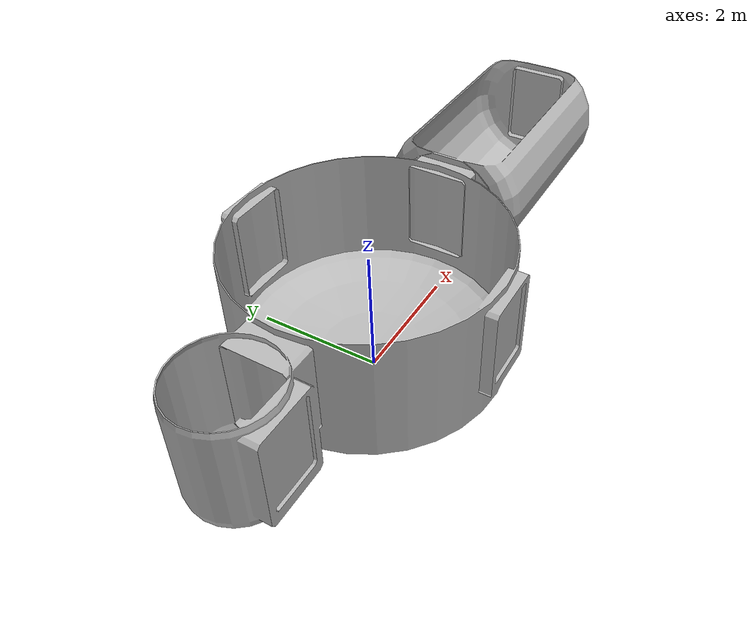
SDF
<?xml version="1.0" ?>
<sdf version="1.9">

  <model name="habitat_demonstration_unit">
    <static>True</static>
      <link name='hdu_1'>
        <inertial> <!--inertial properties of the link mass, inertia matix-->
          <mass>100.0</mass>
          <inertia>
            <ixx>0.095329</ixx>
            <ixy>0</ixy>
            <ixz>0</ixz>
            <iyy>0.381317</iyy>
            <iyz>0</iyz>
            <izz>0.476646</izz>
          </inertia>
        </inertial>
        <visual name='visual'>
          <geometry>
            <mesh>
              <scale>1 1 1</scale>
              <uri>/builder/src/space_resources/models/habitat_demonstration_unit/meshes/habitat_demonstration_unit_part_1_open_top_solidified.dae</uri>
            </mesh>
          </geometry>
        </visual>
        <collision name='collision'>
          <geometry>
            <mesh>
              <scale>1 1 1</scale>
              <uri>/builder/src/space_resources/models/habitat_demonstration_unit/meshes/habitat_demonstration_unit_part_1_open_top_solidified.dae</uri>
            </mesh>
          </geometry>
        </collision>
      </link>
    </model>
</sdf>
